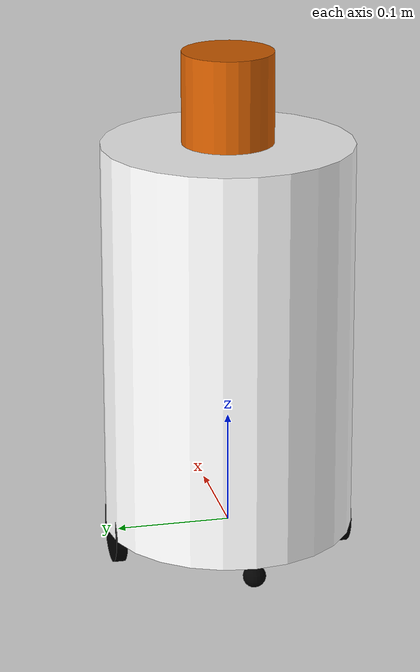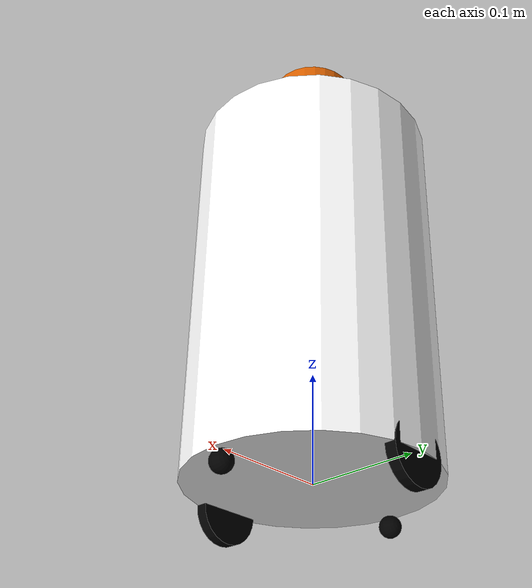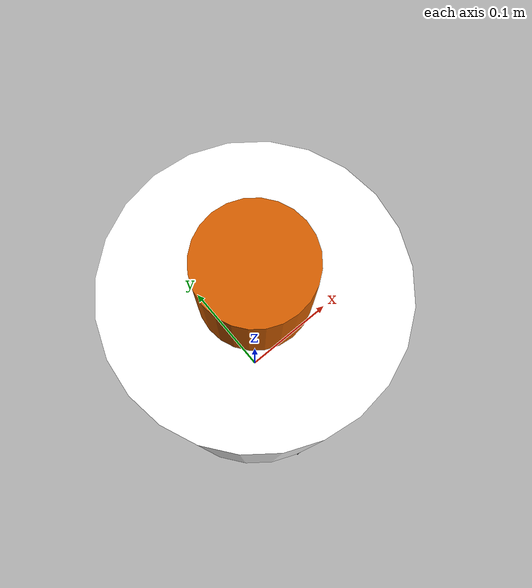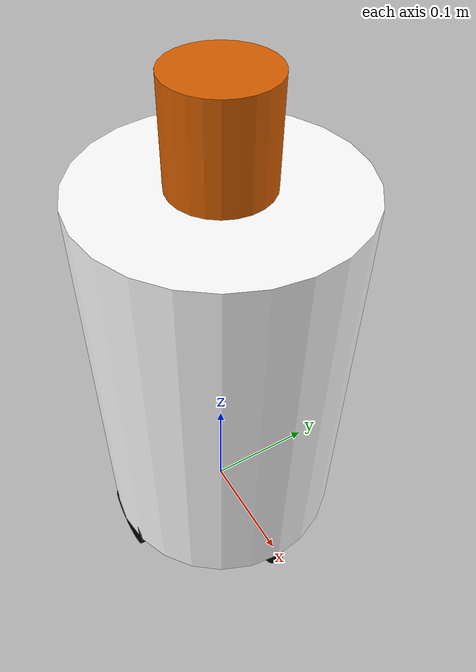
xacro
<?xml version="1.0"?>
<robot name="goldorak" xmlns:xacro="http://ros.org/wiki/xacro">

  <xacro:property name="body_radius" value="0.11" />
  <xacro:property name="body_height" value="0.35" />
  <xacro:property name="wheelbase" value="0.194" />
  <xacro:property name="wheel_radius" value="0.029" />
  <xacro:property name="wheel_thickness" value="0.01" />
  <xacro:property name="casterbase" value="0.194" />
  <xacro:property name="caster_radius" value="0.01" />
  <xacro:property name="beacon_radius" value="0.04" />
  <xacro:property name="beacon_height" value="0.08" />
  <xacro:property name="beacon_offset" value="${body_height + beacon_height / 2}" />
  <xacro:property name="pi" value="3.1415" />

  <material name="blue">
    <color rgba="0 0 .8 1"/>
  </material>

  <material name="black">
    <color rgba="0 0 0 1"/>
  </material>

  <material name="white">
    <color rgba="1 1 1 1"/>
  </material>

  <xacro:macro name="default_inertial" params="mass">
    <inertial>
      <mass value="${mass}" />
      <inertia ixx="1.0" ixy="0.0" ixz="0.0"
               iyy="1.0" iyz="0.0"
               izz="1.0" />
    </inertial>
  </xacro:macro>

  <!-- Base link -->
  <link name="base_link">
    <visual>
      <origin xyz="0 0 0.175" />
      <geometry>
        <cylinder radius="${body_radius}" length="${body_height}"/>
      </geometry>
      <material name="white"/>
    </visual>
    <collision>
      <origin xyz="0 0 0.175" />
      <geometry>
        <cylinder radius="${body_radius}" length="${body_height}"/>
      </geometry>
    </collision>
    <inertial>
      <mass value="4" />
      <origin xyz="0 0 0" />
      <inertia ixx="0.01" ixy="0.0" ixz="0.0"
               iyy="0.01" iyz="0.0"
               izz="0.5" />
    </inertial>
  </link>

  <!-- Wheel link xacro -->
  <xacro:macro name="wheel" params="prefix reflect">

    <link name="${prefix}_wheel">
      <visual>
        <origin xyz="0 0 0" rpy="${pi/2} 0 0" />
        <geometry>
          <cylinder radius="${wheel_radius}" length="${wheel_thickness}"/>
        </geometry>
        <material name="black"/>
        <origin xyz="0 0 0" rpy="0 0 0" />
      </visual>
      <collision>
        <origin xyz="0 0 0" rpy="${pi/2} 0 0" />
        <geometry>
          <cylinder radius="${wheel_radius}" length="${wheel_thickness}"/>
        </geometry>
        <origin xyz="0 0 0" rpy="0 0 0" />
      </collision>
      <inertial>
          <origin xyz="0 0 0"/>
          <mass value="0.01" />
          <inertia ixx="0.001" ixy="0.0" ixz="0.0"
                   iyy="0.001" iyz="0.0"
                   izz="0.001" />
        </inertial>
    </link>
    <joint name="${prefix}_wheel_joint" type="continuous">
      <axis xyz="0 1 0" rpy="0 0 0" />
      <parent link="base_link"/>
      <child link="${prefix}_wheel"/>
      <origin xyz="0
                   ${(wheelbase + wheel_thickness) * reflect / 2}
                   0"
              rpy="0 0 0"/>
    </joint>

    <!-- This block provides the simulator (Gazebo) with information on a few additional
    physical properties. See http://gazebosim.org/tutorials/?tut=ros_urdf for more-->
    <gazebo reference="${prefix}_wheel">
      <mu1>1.0</mu1>
      <mu2>1.0</mu2>
      <kp>1000000.0</kp>
      <kd>100.0</kd>
      <material>Gazebo/Grey</material>
    </gazebo>

    <!-- This block connects the wheel joint to an actuator (motor), which informs both
    simulation and visualization of the robot -->
    <transmission name="${prefix}_wheel_trans" type="SimpleTransmission">
      <type>transmission_interface/SimpleTransmission</type>
      <actuator name="${prefix}_wheel_motor">
        <mechanicalReduction>1</mechanicalReduction>
      </actuator>
      <joint name="${prefix}_wheel_joint">
        <hardwareInterface>VelocityJointInterface</hardwareInterface>
      </joint>
    </transmission>

  </xacro:macro>

  <xacro:wheel prefix="right" reflect="-1"/>
  <xacro:wheel prefix="left" reflect="1"/>

  <xacro:macro name="caster" params="prefix reflect">

    <link name="${prefix}_caster">
      <visual>
        <origin xyz="0 0 0" rpy="${pi/2} 0 0" />
        <geometry>
          <sphere radius="${caster_radius}" />
        </geometry>
        <material name="black"/>
        <origin xyz="0 0 0" rpy="0 0 0" />
      </visual>
      <collision>
        <origin xyz="0 0 0" rpy="${pi/2} 0 0" />
        <geometry>
          <sphere radius="${caster_radius}" />
        </geometry>
        <origin xyz="0 0 0" rpy="0 0 0" />
      </collision>
      <inertial>
        <origin xyz="0 0 0" />
        <mass value="0.01" />
        <inertia ixx="0.001" ixy="0.0" ixz="0.0"
                 iyy="0.001" iyz="0.0"
                 izz="0.001" />
        </inertial>
    </link>
    <joint name="${prefix}_caster_joint" type="fixed">
      <axis xyz="0 1 0" rpy="0 0 0" />
      <parent link="base_link"/>
      <child link="${prefix}_caster"/>
      <origin xyz="${(casterbase + caster_radius) * reflect / 2}
                   0
                   ${- caster_radius}"
              rpy="0 0 0"/>
    </joint>

    <gazebo reference="${prefix}_caster">
      <mu1>0.0</mu1>
      <mu2>0.0</mu2>
      <kp>1000000.0</kp>
      <kd>100.0</kd>
      <minDepth>0.001</minDepth>
      <maxVel>1.0</maxVel>
      <material>Gazebo/Grey</material>
    </gazebo>

  </xacro:macro>

  <xacro:caster prefix="front" reflect="1"/>
  <xacro:caster prefix="rear" reflect="-1"/>

  <!-- Beacon link -->
  <joint name="beacon_joint" type="fixed">
    <axis xyz="0 1 0" />
    <origin xyz="0 0 ${beacon_offset}" rpy="0 0 0"/>
    <parent link="base_link"/>
    <child link="beacon_link"/>
  </joint>

  <link name="beacon_link">
    <collision>
      <origin xyz="0 0 0" rpy="0 0 0"/>
      <geometry>
        <cylinder radius="${beacon_radius}" length="${beacon_height}"/>
      </geometry>
    </collision>

    <visual>
      <origin xyz="0 0 0" rpy="0 0 0"/>
      <geometry>
        <cylinder radius="${beacon_radius}" length="${beacon_height}"/>
      </geometry>
    </visual>

    <inertial>
      <mass value="1e-5" />
      <origin xyz="0 0 0" rpy="0 0 0"/>
      <inertia ixx="1e-6" ixy="0" ixz="0"
               iyy="1e-6" iyz="0"
               izz="1e-6" />
    </inertial>
  </link>

  <!-- Gazebo plugin for ROS Control -->
  <gazebo>
    <plugin name="gazebo_ros_control" filename="libgazebo_ros_control.so">
      <robotNamespace>/</robotNamespace>
    </plugin>
  </gazebo>

  <!-- Gazebo plugin for Laser scanner -->
</robot>
